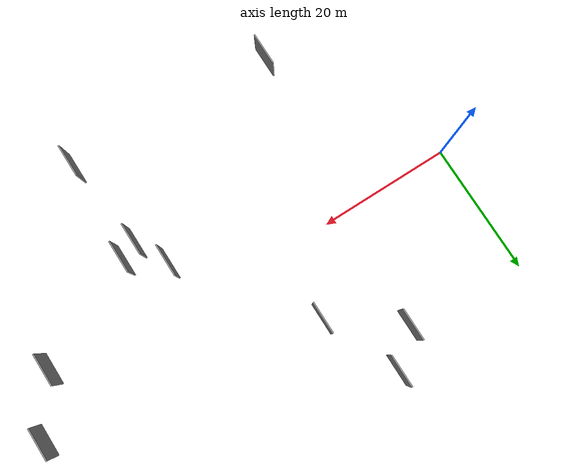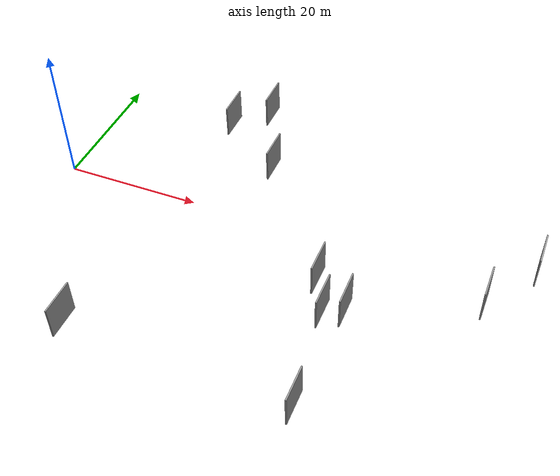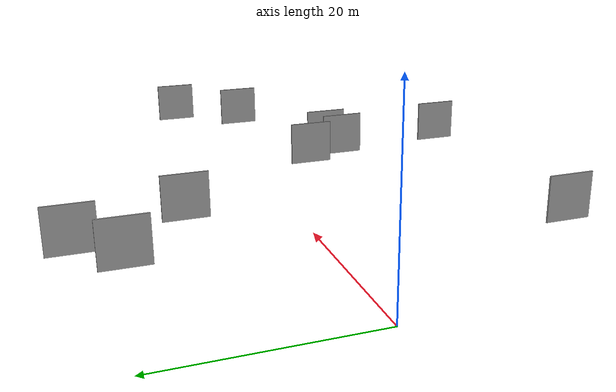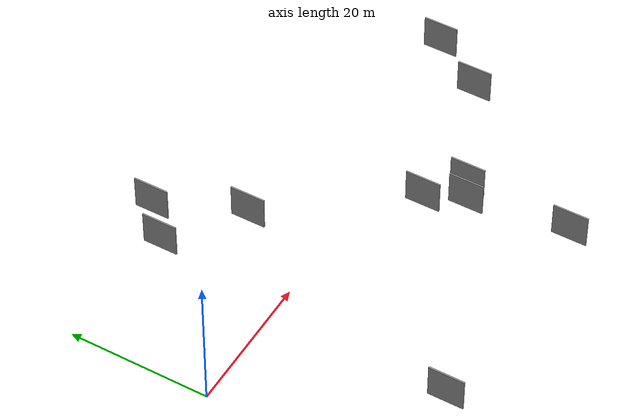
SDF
<sdf version="1.6">
 <world name="default">
  <scene>
   <sky><clouds><speed>12</speed></clouds></sky>
   <ambient>0.4 0.4 0.4 1</ambient>
   <background>0.7 0.7 0.7 1</background>
   <shadows>1</shadows>
  </scene>
  <gravity>0 0 -9.8066</gravity>
  <magnetic_field>6e-06 2.3e-05 -4.2e-05</magnetic_field>
  <physics default="0" name="default_physics" type="ode">
   <ode>
    <solver>
     <type>quick</type>
     <iters>10</iters>
     <sor>1.0</sor>
     <use_dynamic_moi_rescaling>0</use_dynamic_moi_rescaling>
    </solver>
    <constraints>
     <cfm>0</cfm>
     <erp>0.2</erp>
     <contact_max_correcting_vel>100</contact_max_correcting_vel>
     <contact_surface_layer>0.001</contact_surface_layer>
    </constraints>
   </ode>
   <max_step_size>0.004</max_step_size>
   <real_time_factor>1</real_time_factor>
   <real_time_update_rate>250</real_time_update_rate>
  </physics>
  <light name="sun" type="directional">
   <pose>0 0 10 0 0 0</pose>
   <diffuse>0.8 0.8 0.8 1</diffuse>
   <specular>0.2 0.2 0.2 1</specular>
   <attenuation>
    <range>1000</range>
    <constant>0.9</constant>
    <linear>0.01</linear>
    <quadratic>0.001</quadratic>
   </attenuation>
   <direction>-0.5 0.1 -0.9</direction>
  </light>
  <model name="grey_wall_1">
   <static>1</static>
   <pose>18.1696 18.3677 0.0 0.000000 0.000000 1.570796</pose>
   <link name="link">
    <pose>0 0 2.50 0 0 0</pose>
    <collision name="collision"><geometry><box><size>5.00 0.2 5.00</size></box></geometry></collision>
    <visual name="visual">
     <cast_shadows>0</cast_shadows>
     <geometry><box><size>5.00 0.2 5.00</size></box></geometry>
     <material>
      <script>
       <uri>model://grey_wall/materials/scripts</uri>
       <uri>model://grey_wall/materials/textures</uri>
       <name>vrc/grey_wall</name>
      </script>
     </material>
    </visual>
   </link>
  </model>
  <model name="grey_wall_2">
   <static>1</static>
   <pose>27.9692 11.0581 0.0 0.000000 0.000000 1.570796</pose>
   <link name="link">
    <pose>0 0 2.50 0 0 0</pose>
    <collision name="collision"><geometry><box><size>5.00 0.2 5.00</size></box></geometry></collision>
    <visual name="visual">
     <cast_shadows>0</cast_shadows>
     <geometry><box><size>5.00 0.2 5.00</size></box></geometry>
     <material>
      <script>
       <uri>model://grey_wall/materials/scripts</uri>
       <uri>model://grey_wall/materials/textures</uri>
       <name>vrc/grey_wall</name>
      </script>
     </material>
    </visual>
   </link>
  </model>
  <model name="grey_wall_3">
   <static>1</static>
   <pose>46.2118 -26.5815 0.0 0.000000 0.000000 1.570796</pose>
   <link name="link">
    <pose>0 0 2.50 0 0 0</pose>
    <collision name="collision"><geometry><box><size>5.00 0.2 5.00</size></box></geometry></collision>
    <visual name="visual">
     <cast_shadows>0</cast_shadows>
     <geometry><box><size>5.00 0.2 5.00</size></box></geometry>
     <material>
      <script>
       <uri>model://grey_wall/materials/scripts</uri>
       <uri>model://grey_wall/materials/textures</uri>
       <name>vrc/grey_wall</name>
      </script>
     </material>
    </visual>
   </link>
  </model>
  <model name="grey_wall_4">
   <static>1</static>
   <pose>22.9482 22.7150 0.0 0.000000 0.000000 1.570796</pose>
   <link name="link">
    <pose>0 0 2.50 0 0 0</pose>
    <collision name="collision"><geometry><box><size>5.00 0.2 5.00</size></box></geometry></collision>
    <visual name="visual">
     <cast_shadows>0</cast_shadows>
     <geometry><box><size>5.00 0.2 5.00</size></box></geometry>
     <material>
      <script>
       <uri>model://grey_wall/materials/scripts</uri>
       <uri>model://grey_wall/materials/textures</uri>
       <name>vrc/grey_wall</name>
      </script>
     </material>
    </visual>
   </link>
  </model>
  <model name="grey_wall_5">
   <static>1</static>
   <pose>47.1014 -11.0888 0.0 0.000000 0.000000 1.570796</pose>
   <link name="link">
    <pose>0 0 2.50 0 0 0</pose>
    <collision name="collision"><geometry><box><size>5.00 0.2 5.00</size></box></geometry></collision>
    <visual name="visual">
     <cast_shadows>0</cast_shadows>
     <geometry><box><size>5.00 0.2 5.00</size></box></geometry>
     <material>
      <script>
       <uri>model://grey_wall/materials/scripts</uri>
       <uri>model://grey_wall/materials/textures</uri>
       <name>vrc/grey_wall</name>
      </script>
     </material>
    </visual>
   </link>
  </model>
  <model name="grey_wall_6">
   <static>1</static>
   <pose>41.9162 -7.2435 0.0 0.000000 0.000000 1.570796</pose>
   <link name="link">
    <pose>0 0 2.50 0 0 0</pose>
    <collision name="collision"><geometry><box><size>5.00 0.2 5.00</size></box></geometry></collision>
    <visual name="visual">
     <cast_shadows>0</cast_shadows>
     <geometry><box><size>5.00 0.2 5.00</size></box></geometry>
     <material>
      <script>
       <uri>model://grey_wall/materials/scripts</uri>
       <uri>model://grey_wall/materials/textures</uri>
       <name>vrc/grey_wall</name>
      </script>
     </material>
    </visual>
   </link>
  </model>
  <model name="grey_wall_7">
   <static>1</static>
   <pose>14.3278 -25.6805 0.0 0.000000 0.000000 1.570796</pose>
   <link name="link">
    <pose>0 0 2.50 0 0 0</pose>
    <collision name="collision"><geometry><box><size>5.00 0.2 5.00</size></box></geometry></collision>
    <visual name="visual">
     <cast_shadows>0</cast_shadows>
     <geometry><box><size>5.00 0.2 5.00</size></box></geometry>
     <material>
      <script>
       <uri>model://grey_wall/materials/scripts</uri>
       <uri>model://grey_wall/materials/textures</uri>
       <name>vrc/grey_wall</name>
      </script>
     </material>
    </visual>
   </link>
  </model>
  <model name="grey_wall_8">
   <static>1</static>
   <pose>68.8191 4.7541 0.0 0.000000 0.000000 1.570796</pose>
   <link name="link">
    <pose>0 0 2.50 0 0 0</pose>
    <collision name="collision"><geometry><box><size>5.00 0.2 5.00</size></box></geometry></collision>
    <visual name="visual">
     <cast_shadows>0</cast_shadows>
     <geometry><box><size>5.00 0.2 5.00</size></box></geometry>
     <material>
      <script>
       <uri>model://grey_wall/materials/scripts</uri>
       <uri>model://grey_wall/materials/textures</uri>
       <name>vrc/grey_wall</name>
      </script>
     </material>
    </visual>
   </link>
  </model>
  <model name="grey_wall_9">
   <static>1</static>
   <pose>44.4149 -12.3189 0.0 0.000000 0.000000 1.570796</pose>
   <link name="link">
    <pose>0 0 2.50 0 0 0</pose>
    <collision name="collision"><geometry><box><size>5.00 0.2 5.00</size></box></geometry></collision>
    <visual name="visual">
     <cast_shadows>0</cast_shadows>
     <geometry><box><size>5.00 0.2 5.00</size></box></geometry>
     <material>
      <script>
       <uri>model://grey_wall/materials/scripts</uri>
       <uri>model://grey_wall/materials/textures</uri>
       <name>vrc/grey_wall</name>
      </script>
     </material>
    </visual>
   </link>
  </model>
  <model name="grey_wall_10">
   <static>1</static>
   <pose>63.4498 -3.3614 0.0 0.000000 0.000000 1.570796</pose>
   <link name="link">
    <pose>0 0 2.50 0 0 0</pose>
    <collision name="collision"><geometry><box><size>5.00 0.2 5.00</size></box></geometry></collision>
    <visual name="visual">
     <cast_shadows>0</cast_shadows>
     <geometry><box><size>5.00 0.2 5.00</size></box></geometry>
     <material>
      <script>
       <uri>model://grey_wall/materials/scripts</uri>
       <uri>model://grey_wall/materials/textures</uri>
       <name>vrc/grey_wall</name>
      </script>
     </material>
    </visual>
   </link>
  </model>
 </world>
</sdf>
